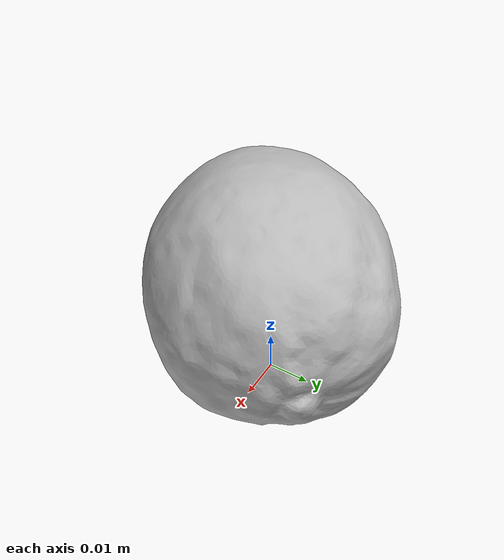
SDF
<?xml version="1.0" ?>
<sdf version='1.8'>
  <model name='ycb_014_lemon'>
    <link name='body'>
      <inertial>
        <mass>0.029</mass>
        <pose>-0.000200493017 -0.000693781786 0.0262545336 0 0 0</pose>
        <inertia>
          <ixx>9.11673974512e-06</ixx>
          <ixy>-9.15011808197e-07</ixy>
          <ixz>3.26771698102e-08</ixz>
          <iyy>9.42536226648e-06</iyy>
          <iyz>-3.43071613315e-09</iyz>
          <izz>1.01790782739e-05</izz>
        </inertia>
      </inertial>
      <visual name='ycb_014_lemon_visual'>
        <pose>0.01057 -0.021708 4.6e-05 0 0 0</pose>
        <geometry>
          <mesh>
            <uri>model://ycb_014_lemon/meshes/textured.dae</uri>
          </mesh>
        </geometry>
      </visual>
      <collision name='ycb_014_lemon_collision'>
        <pose>0.01057 -0.021708 4.6e-05 0 0 0</pose>
        <geometry>
          <mesh>
            <uri>model://ycb_014_lemon/meshes/nontextured.stl</uri>
          </mesh>
        </geometry>
        <max_contacts>10</max_contacts>
        <surface>
          <contact>
            <ode>
              <kp>1e15</kp>
              <kd>1e13</kd>
            </ode>
          </contact>
        </surface>
      </collision>
    </link>
  </model>
</sdf>
